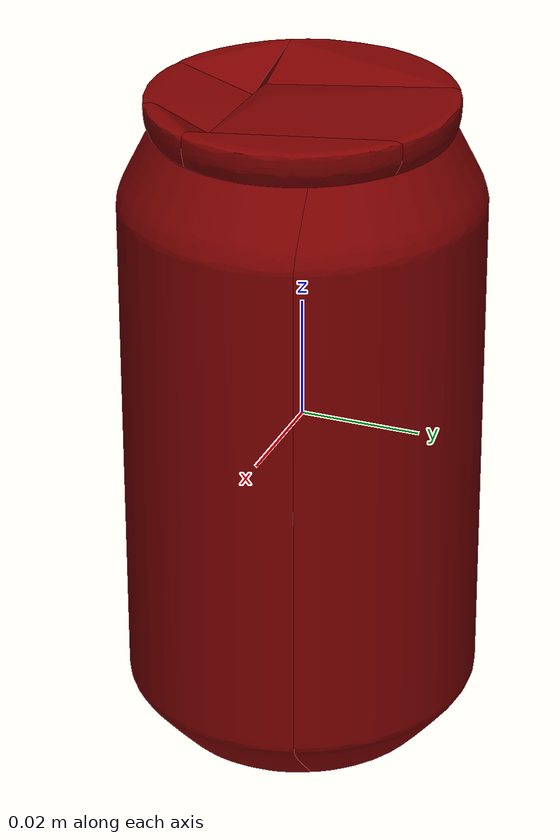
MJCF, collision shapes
<mujoco model="can_11">
  <asset>
    <mesh file="visual/model_normalized_0.obj" name="model_normalized_0_vis" scale="0.11 0.11 0.11" refquat="1.0 0.0 0.0 0.0"/>
    <texture type="2d" name="image0" file="visual/image0.png"/>
    <material name="bodyblinn1SG" texture="image0" specular="0.5" shininess="0.630875523"/>
    <mesh file="collision/collision_mesh_collision_0.obj" name="can_collision_mesh_0" scale="0.11 0.11 0.11" refquat="1.0 0.0 0.0 0.0"/>
    <mesh file="collision/collision_mesh_collision_1.obj" name="can_collision_mesh_1" scale="0.11 0.11 0.11" refquat="1.0 0.0 0.0 0.0"/>
    <mesh file="collision/collision_mesh_collision_2.obj" name="can_collision_mesh_2" scale="0.11 0.11 0.11" refquat="1.0 0.0 0.0 0.0"/>
    <mesh file="collision/collision_mesh_collision_3.obj" name="can_collision_mesh_3" scale="0.11 0.11 0.11" refquat="1.0 0.0 0.0 0.0"/>
    <mesh file="collision/collision_mesh_collision_4.obj" name="can_collision_mesh_4" scale="0.11 0.11 0.11" refquat="1.0 0.0 0.0 0.0"/>
    <mesh file="collision/collision_mesh_collision_5.obj" name="can_collision_mesh_5" scale="0.11 0.11 0.11" refquat="1.0 0.0 0.0 0.0"/>
    <mesh file="collision/collision_mesh_collision_6.obj" name="can_collision_mesh_6" scale="0.11 0.11 0.11" refquat="1.0 0.0 0.0 0.0"/>
    <mesh file="collision/collision_mesh_collision_7.obj" name="can_collision_mesh_7" scale="0.11 0.11 0.11" refquat="1.0 0.0 0.0 0.0"/>
    <mesh file="collision/collision_mesh_collision_8.obj" name="can_collision_mesh_8" scale="0.11 0.11 0.11" refquat="1.0 0.0 0.0 0.0"/>
    <mesh file="collision/collision_mesh_collision_9.obj" name="can_collision_mesh_9" scale="0.11 0.11 0.11" refquat="1.0 0.0 0.0 0.0"/>
  </asset>
  <default>
    <default class="region">
      <geom group="1" conaffinity="0" contype="0" rgba="0 1 0 0"/>
    </default>
    <default class="collision">
      <geom group="0" rgba="0.5 0 0 0.5" density="1000.0"/>
    </default>
  </default>
  <worldbody>
    <body>
      <body name="object">
        <geom solimp="0.998 0.998 0.001" solref="0.001 1" density="100" friction="0.95 0.3 0.1" type="mesh" mesh="model_normalized_0_vis" conaffinity="0" contype="0" group="1" material="bodyblinn1SG"/>
        <geom class="region" name="reg_bbox" type="box" pos="0.0 0.0 2.0784500000020634e-06" size="0.0301571215 0.0291807648 0.05547530065000001"/>
        <geom mesh="can_collision_mesh_0" type="mesh" class="collision"/>
        <geom mesh="can_collision_mesh_1" type="mesh" class="collision"/>
        <geom mesh="can_collision_mesh_2" type="mesh" class="collision"/>
        <geom mesh="can_collision_mesh_3" type="mesh" class="collision"/>
        <geom mesh="can_collision_mesh_4" type="mesh" class="collision"/>
        <geom mesh="can_collision_mesh_5" type="mesh" class="collision"/>
        <geom mesh="can_collision_mesh_6" type="mesh" class="collision"/>
        <geom mesh="can_collision_mesh_7" type="mesh" class="collision"/>
        <geom mesh="can_collision_mesh_8" type="mesh" class="collision"/>
        <geom mesh="can_collision_mesh_9" type="mesh" class="collision"/>
      </body>
    </body>
  </worldbody>
</mujoco>
